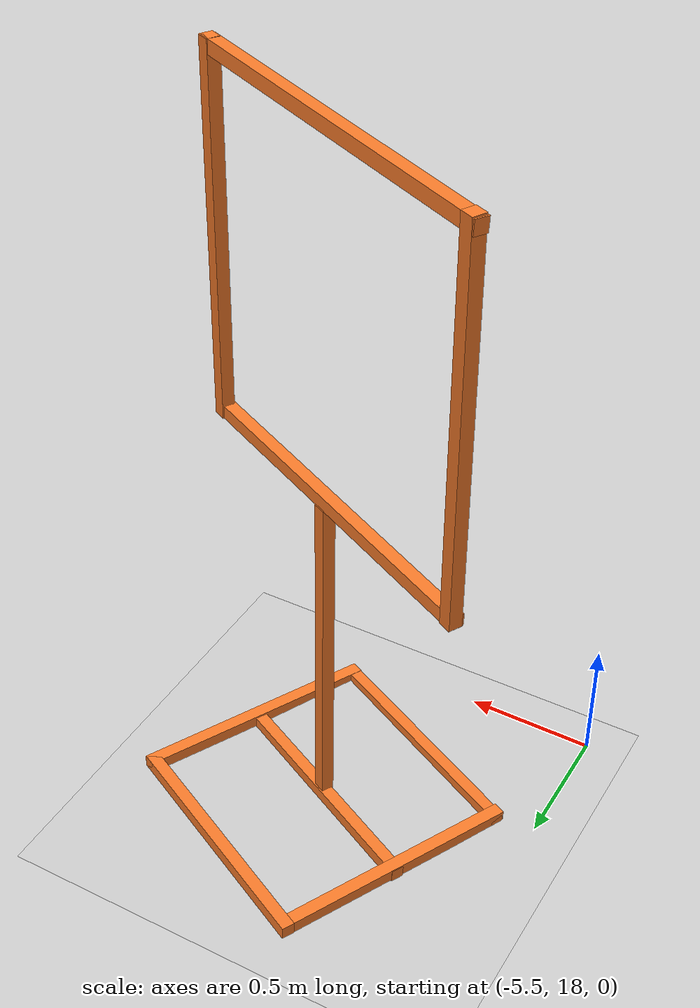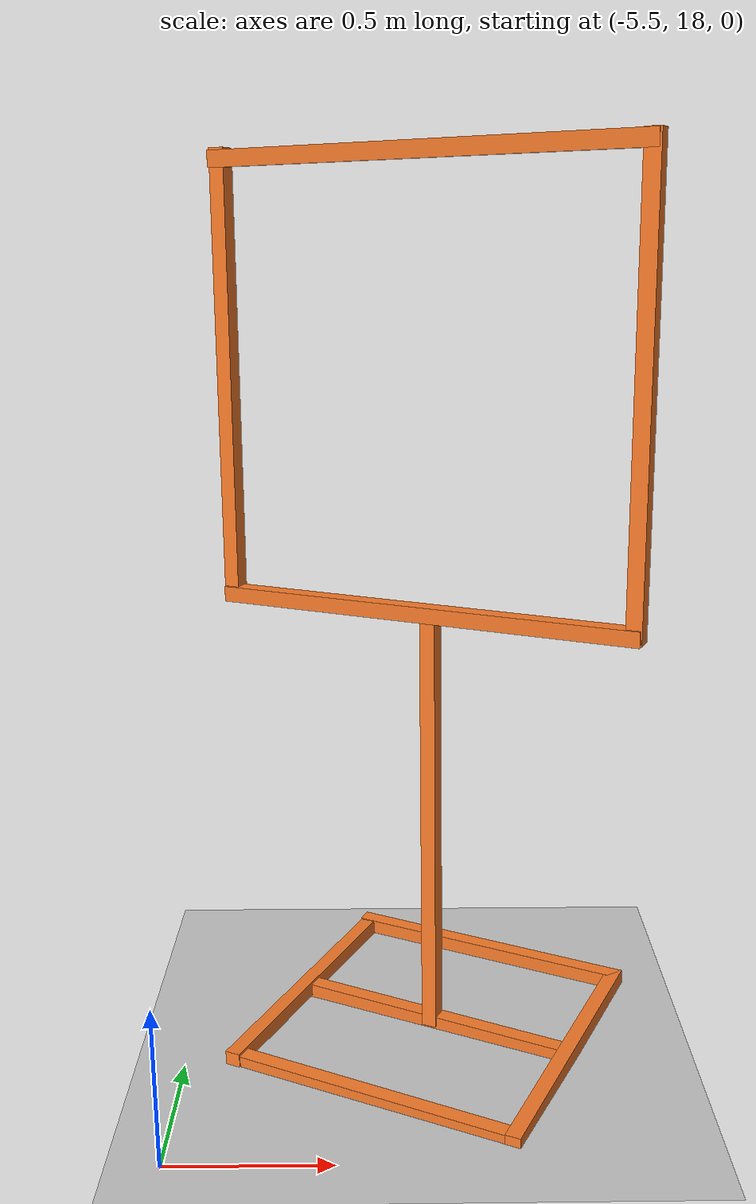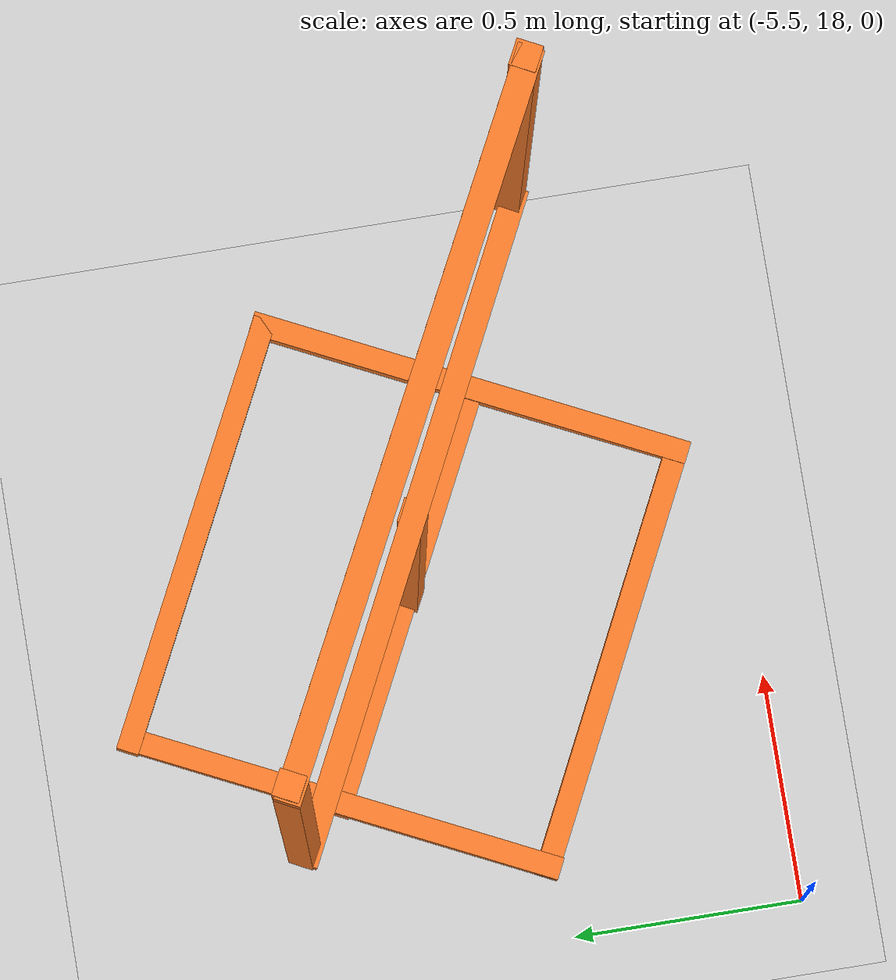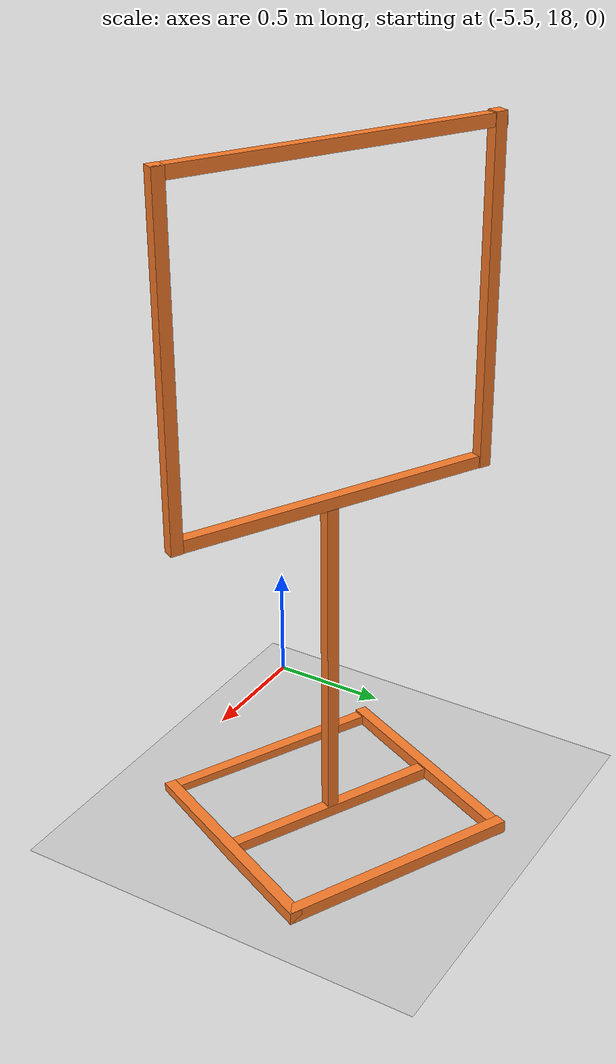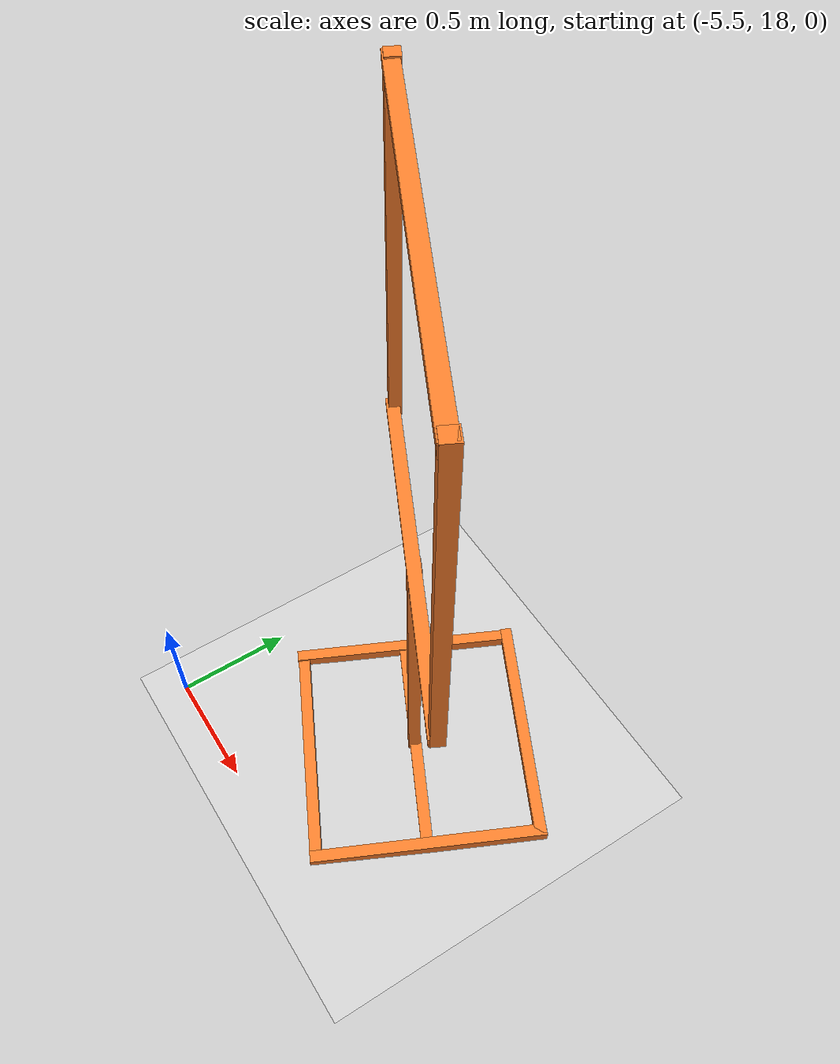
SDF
<sdf version="1.6">
 <world name="default">
  <model name="ground_plane">
   <static>1</static>
   <link name="link">
    <collision name="collision">
     <geometry><plane><normal>0 0 1</normal><size>100 100</size></plane></geometry>
     <surface><friction><ode><mu>100</mu><mu2>50</mu2></ode></friction></surface>
    </collision>
    <visual name="visual">
     <cast_shadows>0</cast_shadows>
     <geometry><plane><normal>0 0 1</normal><size>100 100</size></plane></geometry>
     <material>
      <script><uri>file://media/materials/scripts/gazebo.material</uri><name>Gazebo/Grey</name></script>
     </material>
    </visual>
    <velocity_decay><linear>0</linear><angular>0</angular></velocity_decay>
   </link>
  </model>
  <model name="closed_gate_clone_clone_clone_2">
   <link name="link">
    <inertial>
     <mass>1</mass>
     <inertia>
      <ixx>0.166667</ixx>
      <ixy>0</ixy>
      <ixz>0</ixz>
      <iyy>0.166667</iyy>
      <iyz>0</iyz>
      <izz>0.166667</izz>
     </inertia>
    </inertial>
    <pose>0.404756 -0.715724 1.41623 0 -0 0</pose>
    <visual name="visual">
     <geometry><box><size>0.05 0.05 1.4</size></box></geometry>
     <material>
      <script><name>Gazebo/Grey</name><uri>file://media/materials/scripts/gazebo.material</uri></script>
      <shader type="vertex"><normal_map>__default__</normal_map></shader>
      <ambient>0.976 0.484 0.164 1</ambient>
      <diffuse>0.976 0.484 0.164 1</diffuse>
      <specular>0.01 0.01 0.01 1</specular>
      <emissive>0 0 0 1</emissive>
     </material>
    </visual>
    <collision name="collision">
     <geometry><box><size>0.05 0.05 1.4</size></box></geometry>
     <surface>
      <friction>
       <ode><mu>1</mu><mu2>1</mu2><fdir1>0 0 0</fdir1><slip1>0</slip1><slip2>0</slip2></ode>
       <torsional>
        <coefficient>1</coefficient>
        <patch_radius>0</patch_radius>
        <surface_radius>0</surface_radius>
        <use_patch_radius>1</use_patch_radius>
        <ode><slip>0</slip></ode>
       </torsional>
      </friction>
      <bounce><restitution_coefficient>0</restitution_coefficient><threshold>1e+06</threshold></bounce>
      <contact>
       <collide_without_contact>0</collide_without_contact>
       <collide_without_contact_bitmask>1</collide_without_contact_bitmask>
       <collide_bitmask>1</collide_bitmask>
       <ode>
        <soft_cfm>0</soft_cfm>
        <soft_erp>0.2</soft_erp>
        <kp>1e+13</kp>
        <kd>1</kd>
        <max_vel>0.01</max_vel>
        <min_depth>0</min_depth>
       </ode>
       <bullet>
        <split_impulse>1</split_impulse>
        <split_impulse_penetration_threshold>-0.01</split_impulse_penetration_threshold>
        <soft_cfm>0</soft_cfm>
        <soft_erp>0.2</soft_erp>
        <kp>1e+13</kp>
        <kd>1</kd>
       </bullet>
      </contact>
     </surface>
    </collision>
   </link>
   <link name="link_clone_0_clone_0">
    <inertial>
     <mass>1</mass>
     <inertia>
      <ixx>0.166667</ixx>
      <ixy>0</ixy>
      <ixz>0</ixz>
      <iyy>0.166667</iyy>
      <iyz>0</iyz>
      <izz>0.166667</izz>
     </inertia>
    </inertial>
    <pose>1.11096 -0.693594 -0.667388 -1.57955 0.044957 -1.56415</pose>
    <visual name="visual">
     <geometry><box><size>0.05 0.05 1</size></box></geometry>
     <material>
      <script><name>Gazebo/Grey</name><uri>file://media/materials/scripts/gazebo.material</uri></script>
      <shader type="vertex"><normal_map>__default__</normal_map></shader>
      <ambient>0.976 0.484 0.164 1</ambient>
      <diffuse>0.976 0.484 0.164 1</diffuse>
      <specular>0.01 0.01 0.01 1</specular>
      <emissive>0 0 0 1</emissive>
     </material>
    </visual>
    <collision name="collision">
     <geometry><box><size>0.05 0.05 1</size></box></geometry>
     <surface>
      <friction>
       <ode><mu>1</mu><mu2>1</mu2><fdir1>0 0 0</fdir1><slip1>0</slip1><slip2>0</slip2></ode>
       <torsional>
        <coefficient>1</coefficient>
        <patch_radius>0</patch_radius>
        <surface_radius>0</surface_radius>
        <use_patch_radius>1</use_patch_radius>
        <ode><slip>0</slip></ode>
       </torsional>
      </friction>
      <bounce><restitution_coefficient>0</restitution_coefficient><threshold>1e+06</threshold></bounce>
      <contact>
       <collide_without_contact>0</collide_without_contact>
       <collide_without_contact_bitmask>1</collide_without_contact_bitmask>
       <collide_bitmask>1</collide_bitmask>
       <ode>
        <soft_cfm>0</soft_cfm>
        <soft_erp>0.2</soft_erp>
        <kp>1e+13</kp>
        <kd>1</kd>
        <max_vel>0.01</max_vel>
        <min_depth>0</min_depth>
       </ode>
       <bullet>
        <split_impulse>1</split_impulse>
        <split_impulse_penetration_threshold>-0.01</split_impulse_penetration_threshold>
        <soft_cfm>0</soft_cfm>
        <soft_erp>0.2</soft_erp>
        <kp>1e+13</kp>
        <kd>1</kd>
       </bullet>
      </contact>
     </surface>
    </collision>
   </link>
   <link name="link_clone_0_clone_0_clone">
    <inertial>
     <mass>1</mass>
     <inertia>
      <ixx>0.166667</ixx>
      <ixy>0</ixy>
      <ixz>0</ixz>
      <iyy>0.166667</iyy>
      <iyz>0</iyz>
      <izz>0.166667</izz>
     </inertia>
    </inertial>
    <pose>0.637485 -0.695511 -0.656732 -1.55146 -0.019345 0.017432</pose>
    <visual name="visual">
     <geometry><box><size>0.05 0.05 1</size></box></geometry>
     <material>
      <script><name>Gazebo/Grey</name><uri>file://media/materials/scripts/gazebo.material</uri></script>
      <shader type="vertex"><normal_map>__default__</normal_map></shader>
      <ambient>0.976 0.484 0.164 1</ambient>
      <diffuse>0.976 0.484 0.164 1</diffuse>
      <specular>0.01 0.01 0.01 1</specular>
      <emissive>0 0 0 1</emissive>
     </material>
    </visual>
    <collision name="collision">
     <geometry><box><size>0.05 0.05 1</size></box></geometry>
     <surface>
      <friction>
       <ode><mu>1</mu><mu2>1</mu2><fdir1>0 0 0</fdir1><slip1>0</slip1><slip2>0</slip2></ode>
       <torsional>
        <coefficient>1</coefficient>
        <patch_radius>0</patch_radius>
        <surface_radius>0</surface_radius>
        <use_patch_radius>1</use_patch_radius>
        <ode><slip>0</slip></ode>
       </torsional>
      </friction>
      <bounce><restitution_coefficient>0</restitution_coefficient><threshold>1e+06</threshold></bounce>
      <contact>
       <collide_without_contact>0</collide_without_contact>
       <collide_without_contact_bitmask>1</collide_without_contact_bitmask>
       <collide_bitmask>1</collide_bitmask>
       <ode>
        <soft_cfm>0</soft_cfm>
        <soft_erp>0.2</soft_erp>
        <kp>1e+13</kp>
        <kd>1</kd>
        <max_vel>0.01</max_vel>
        <min_depth>0</min_depth>
       </ode>
       <bullet>
        <split_impulse>1</split_impulse>
        <split_impulse_penetration_threshold>-0.01</split_impulse_penetration_threshold>
        <soft_cfm>0</soft_cfm>
        <soft_erp>0.2</soft_erp>
        <kp>1e+13</kp>
        <kd>1</kd>
       </bullet>
      </contact>
     </surface>
    </collision>
   </link>
   <link name="link_clone_0_clone_0_clone_0">
    <inertial>
     <mass>1</mass>
     <inertia>
      <ixx>0.166667</ixx>
      <ixy>0</ixy>
      <ixz>0</ixz>
      <iyy>0.166667</iyy>
      <iyz>0</iyz>
      <izz>0.166667</izz>
     </inertia>
    </inertial>
    <pose>1.12077 -1.16283 -0.677317 -1.57839 0.053451 -1.56287</pose>
    <visual name="visual">
     <geometry><box><size>0.05 0.05 1</size></box></geometry>
     <material>
      <script><name>Gazebo/Grey</name><uri>file://media/materials/scripts/gazebo.material</uri></script>
      <shader type="vertex"><normal_map>__default__</normal_map></shader>
      <ambient>0.976 0.484 0.164 1</ambient>
      <diffuse>0.976 0.484 0.164 1</diffuse>
      <specular>0.01 0.01 0.01 1</specular>
      <emissive>0 0 0 1</emissive>
     </material>
    </visual>
    <collision name="collision">
     <geometry><box><size>0.05 0.05 1</size></box></geometry>
     <surface>
      <friction>
       <ode><mu>1</mu><mu2>1</mu2><fdir1>0 0 0</fdir1><slip1>0</slip1><slip2>0</slip2></ode>
       <torsional>
        <coefficient>1</coefficient>
        <patch_radius>0</patch_radius>
        <surface_radius>0</surface_radius>
        <use_patch_radius>1</use_patch_radius>
        <ode><slip>0</slip></ode>
       </torsional>
      </friction>
      <bounce><restitution_coefficient>0</restitution_coefficient><threshold>1e+06</threshold></bounce>
      <contact>
       <collide_without_contact>0</collide_without_contact>
       <collide_without_contact_bitmask>1</collide_without_contact_bitmask>
       <collide_bitmask>1</collide_bitmask>
       <ode>
        <soft_cfm>0</soft_cfm>
        <soft_erp>0.2</soft_erp>
        <kp>1e+13</kp>
        <kd>1</kd>
        <max_vel>0.01</max_vel>
        <min_depth>0</min_depth>
       </ode>
       <bullet>
        <split_impulse>1</split_impulse>
        <split_impulse_penetration_threshold>-0.01</split_impulse_penetration_threshold>
        <soft_cfm>0</soft_cfm>
        <soft_erp>0.2</soft_erp>
        <kp>1e+13</kp>
        <kd>1</kd>
       </bullet>
      </contact>
     </surface>
    </collision>
   </link>
   <link name="link_clone_0_clone_0_clone_2">
    <inertial>
     <mass>1</mass>
     <inertia>
      <ixx>0.166667</ixx>
      <ixy>0</ixy>
      <ixz>0</ixz>
      <iyy>0.166667</iyy>
      <iyz>0</iyz>
      <izz>0.166667</izz>
     </inertia>
    </inertial>
    <pose>1.10088 -0.214462 -0.645898 -1.57451 0.053447 -1.56287</pose>
    <visual name="visual">
     <geometry><box><size>0.05 0.05 1</size></box></geometry>
     <material>
      <script><name>Gazebo/Grey</name><uri>file://media/materials/scripts/gazebo.material</uri></script>
      <shader type="vertex"><normal_map>__default__</normal_map></shader>
      <ambient>0.976 0.484 0.164 1</ambient>
      <diffuse>0.976 0.484 0.164 1</diffuse>
      <specular>0.01 0.01 0.01 1</specular>
      <emissive>0 0 0 1</emissive>
     </material>
    </visual>
    <collision name="collision">
     <geometry><box><size>0.05 0.05 1</size></box></geometry>
     <surface>
      <friction>
       <ode><mu>1</mu><mu2>1</mu2><fdir1>0 0 0</fdir1><slip1>0</slip1><slip2>0</slip2></ode>
       <torsional>
        <coefficient>1</coefficient>
        <patch_radius>0</patch_radius>
        <surface_radius>0</surface_radius>
        <use_patch_radius>1</use_patch_radius>
        <ode><slip>0</slip></ode>
       </torsional>
      </friction>
      <bounce><restitution_coefficient>0</restitution_coefficient><threshold>1e+06</threshold></bounce>
      <contact>
       <collide_without_contact>0</collide_without_contact>
       <collide_without_contact_bitmask>1</collide_without_contact_bitmask>
       <collide_bitmask>1</collide_bitmask>
       <ode>
        <soft_cfm>0</soft_cfm>
        <soft_erp>0.2</soft_erp>
        <kp>1e+13</kp>
        <kd>1</kd>
        <max_vel>0.01</max_vel>
        <min_depth>0</min_depth>
       </ode>
       <bullet>
        <split_impulse>1</split_impulse>
        <split_impulse_penetration_threshold>-0.01</split_impulse_penetration_threshold>
        <soft_cfm>0</soft_cfm>
        <soft_erp>0.2</soft_erp>
        <kp>1e+13</kp>
        <kd>1</kd>
       </bullet>
      </contact>
     </surface>
    </collision>
   </link>
   <link name="link_clone_0_clone_0_clone_clone">
    <inertial>
     <mass>1</mass>
     <inertia>
      <ixx>0.166667</ixx>
      <ixy>0</ixy>
      <ixz>0</ixz>
      <iyy>0.166667</iyy>
      <iyz>0</iyz>
      <izz>0.166667</izz>
     </inertia>
    </inertial>
    <pose>1.59453 -0.684923 -0.663241 -1.53838 -0.023075 0.018345</pose>
    <visual name="visual">
     <geometry><box><size>0.05 0.05 1</size></box></geometry>
     <material>
      <script><name>Gazebo/Grey</name><uri>file://media/materials/scripts/gazebo.material</uri></script>
      <shader type="vertex"><normal_map>__default__</normal_map></shader>
      <ambient>0.976 0.484 0.164 1</ambient>
      <diffuse>0.976 0.484 0.164 1</diffuse>
      <specular>0.01 0.01 0.01 1</specular>
      <emissive>0 0 0 1</emissive>
     </material>
    </visual>
    <collision name="collision">
     <geometry><box><size>0.05 0.05 1</size></box></geometry>
     <surface>
      <friction>
       <ode><mu>1</mu><mu2>1</mu2><fdir1>0 0 0</fdir1><slip1>0</slip1><slip2>0</slip2></ode>
       <torsional>
        <coefficient>1</coefficient>
        <patch_radius>0</patch_radius>
        <surface_radius>0</surface_radius>
        <use_patch_radius>1</use_patch_radius>
        <ode><slip>0</slip></ode>
       </torsional>
      </friction>
      <bounce><restitution_coefficient>0</restitution_coefficient><threshold>1e+06</threshold></bounce>
      <contact>
       <collide_without_contact>0</collide_without_contact>
       <collide_without_contact_bitmask>1</collide_without_contact_bitmask>
       <collide_bitmask>1</collide_bitmask>
       <ode>
        <soft_cfm>0</soft_cfm>
        <soft_erp>0.2</soft_erp>
        <kp>1e+13</kp>
        <kd>1</kd>
        <max_vel>0.01</max_vel>
        <min_depth>0</min_depth>
       </ode>
       <bullet>
        <split_impulse>1</split_impulse>
        <split_impulse_penetration_threshold>-0.01</split_impulse_penetration_threshold>
        <soft_cfm>0</soft_cfm>
        <soft_erp>0.2</soft_erp>
        <kp>1e+13</kp>
        <kd>1</kd>
       </bullet>
      </contact>
     </surface>
    </collision>
   </link>
   <link name="link_clone_0_clone_1">
    <inertial>
     <mass>1</mass>
     <inertia>
      <ixx>0.166667</ixx>
      <ixy>0</ixy>
      <ixz>0</ixz>
      <iyy>0.166667</iyy>
      <iyz>0</iyz>
      <izz>0.166667</izz>
     </inertia>
    </inertial>
    <pose>1.08198 -0.717602 0.744079 -1.56201 0.04483 -1.56244</pose>
    <visual name="visual">
     <geometry><box><size>0.05 0.05 1.4</size></box></geometry>
     <material>
      <script><name>Gazebo/Grey</name><uri>file://media/materials/scripts/gazebo.material</uri></script>
      <shader type="vertex"><normal_map>__default__</normal_map></shader>
      <ambient>0.976 0.484 0.164 1</ambient>
      <diffuse>0.976 0.484 0.164 1</diffuse>
      <specular>0.01 0.01 0.01 1</specular>
      <emissive>0 0 0 1</emissive>
     </material>
    </visual>
    <collision name="collision">
     <geometry><box><size>0.05 0.05 1.4</size></box></geometry>
     <surface>
      <friction>
       <ode><mu>1</mu><mu2>1</mu2><fdir1>0 0 0</fdir1><slip1>0</slip1><slip2>0</slip2></ode>
       <torsional>
        <coefficient>1</coefficient>
        <patch_radius>0</patch_radius>
        <surface_radius>0</surface_radius>
        <use_patch_radius>1</use_patch_radius>
        <ode><slip>0</slip></ode>
       </torsional>
      </friction>
      <bounce><restitution_coefficient>0</restitution_coefficient><threshold>1e+06</threshold></bounce>
      <contact>
       <collide_without_contact>0</collide_without_contact>
       <collide_without_contact_bitmask>1</collide_without_contact_bitmask>
       <collide_bitmask>1</collide_bitmask>
       <ode>
        <soft_cfm>0</soft_cfm>
        <soft_erp>0.2</soft_erp>
        <kp>1e+13</kp>
        <kd>1</kd>
        <max_vel>0.01</max_vel>
        <min_depth>0</min_depth>
       </ode>
       <bullet>
        <split_impulse>1</split_impulse>
        <split_impulse_penetration_threshold>-0.01</split_impulse_penetration_threshold>
        <soft_cfm>0</soft_cfm>
        <soft_erp>0.2</soft_erp>
        <kp>1e+13</kp>
        <kd>1</kd>
       </bullet>
      </contact>
     </surface>
    </collision>
   </link>
   <link name="link_clone_0_clone_1_clone">
    <inertial>
     <mass>1</mass>
     <inertia>
      <ixx>0.166667</ixx>
      <ixy>0</ixy>
      <ixz>0</ixz>
      <iyy>0.166667</iyy>
      <iyz>0</iyz>
      <izz>0.166667</izz>
     </inertia>
    </inertial>
    <pose>1.07529 -0.719849 2.09328 -1.55888 0.053444 -1.57124</pose>
    <visual name="visual">
     <geometry><box><size>0.05 0.05 1.4</size></box></geometry>
     <material>
      <script><name>Gazebo/Grey</name><uri>file://media/materials/scripts/gazebo.material</uri></script>
      <shader type="vertex"><normal_map>__default__</normal_map></shader>
      <ambient>0.976 0.484 0.164 1</ambient>
      <diffuse>0.976 0.484 0.164 1</diffuse>
      <specular>0.01 0.01 0.01 1</specular>
      <emissive>0 0 0 1</emissive>
     </material>
    </visual>
    <collision name="collision">
     <geometry><box><size>0.05 0.05 1.4</size></box></geometry>
     <surface>
      <friction>
       <ode><mu>1</mu><mu2>1</mu2><fdir1>0 0 0</fdir1><slip1>0</slip1><slip2>0</slip2></ode>
       <torsional>
        <coefficient>1</coefficient>
        <patch_radius>0</patch_radius>
        <surface_radius>0</surface_radius>
        <use_patch_radius>1</use_patch_radius>
        <ode><slip>0</slip></ode>
       </torsional>
      </friction>
      <bounce><restitution_coefficient>0</restitution_coefficient><threshold>1e+06</threshold></bounce>
      <contact>
       <collide_without_contact>0</collide_without_contact>
       <collide_without_contact_bitmask>1</collide_without_contact_bitmask>
       <collide_bitmask>1</collide_bitmask>
       <ode>
        <soft_cfm>0</soft_cfm>
        <soft_erp>0.2</soft_erp>
        <kp>1e+13</kp>
        <kd>1</kd>
        <max_vel>0.01</max_vel>
        <min_depth>0</min_depth>
       </ode>
       <bullet>
        <split_impulse>1</split_impulse>
        <split_impulse_penetration_threshold>-0.01</split_impulse_penetration_threshold>
        <soft_cfm>0</soft_cfm>
        <soft_erp>0.2</soft_erp>
        <kp>1e+13</kp>
        <kd>1</kd>
       </bullet>
      </contact>
     </surface>
    </collision>
   </link>
   <link name="link_clone_1">
    <inertial>
     <mass>1</mass>
     <inertia>
      <ixx>0.166667</ixx>
      <ixy>0</ixy>
      <ixz>0</ixz>
      <iyy>0.166667</iyy>
      <iyz>0</iyz>
      <izz>0.166667</izz>
     </inertia>
    </inertial>
    <pose>1.11167 -0.706269 0.02254 0.008527 -0.003582 0.001077</pose>
    <visual name="visual">
     <geometry><box><size>0.05 0.05 1.4</size></box></geometry>
     <material>
      <script><name>Gazebo/Grey</name><uri>file://media/materials/scripts/gazebo.material</uri></script>
      <shader type="vertex"><normal_map>__default__</normal_map></shader>
      <ambient>0.976 0.484 0.164 1</ambient>
      <diffuse>0.976 0.484 0.164 1</diffuse>
      <specular>0.01 0.01 0.01 1</specular>
      <emissive>0 0 0 1</emissive>
     </material>
    </visual>
    <collision name="collision">
     <geometry><box><size>0.05 0.05 1.4</size></box></geometry>
     <surface>
      <friction>
       <ode><mu>1</mu><mu2>1</mu2><fdir1>0 0 0</fdir1><slip1>0</slip1><slip2>0</slip2></ode>
       <torsional>
        <coefficient>1</coefficient>
        <patch_radius>0</patch_radius>
        <surface_radius>0</surface_radius>
        <use_patch_radius>1</use_patch_radius>
        <ode><slip>0</slip></ode>
       </torsional>
      </friction>
      <bounce><restitution_coefficient>0</restitution_coefficient><threshold>1e+06</threshold></bounce>
      <contact>
       <collide_without_contact>0</collide_without_contact>
       <collide_without_contact_bitmask>1</collide_without_contact_bitmask>
       <collide_bitmask>1</collide_bitmask>
       <ode>
        <soft_cfm>0</soft_cfm>
        <soft_erp>0.2</soft_erp>
        <kp>1e+13</kp>
        <kd>1</kd>
        <max_vel>0.01</max_vel>
        <min_depth>0</min_depth>
       </ode>
       <bullet>
        <split_impulse>1</split_impulse>
        <split_impulse_penetration_threshold>-0.01</split_impulse_penetration_threshold>
        <soft_cfm>0</soft_cfm>
        <soft_erp>0.2</soft_erp>
        <kp>1e+13</kp>
        <kd>1</kd>
       </bullet>
      </contact>
     </surface>
    </collision>
   </link>
   <link name="link_clone_7">
    <inertial>
     <mass>1</mass>
     <inertia>
      <ixx>0.166667</ixx>
      <ixy>0</ixy>
      <ixz>0</ixz>
      <iyy>0.166667</iyy>
      <iyz>0</iyz>
      <izz>0.166667</izz>
     </inertia>
    </inertial>
    <pose>1.75876 -0.711707 1.42733 0.008527 -0.003582 0.001077</pose>
    <visual name="visual">
     <geometry><box><size>0.05 0.05 1.4</size></box></geometry>
     <material>
      <script><name>Gazebo/Grey</name><uri>file://media/materials/scripts/gazebo.material</uri></script>
      <shader type="vertex"><normal_map>__default__</normal_map></shader>
      <ambient>0.976 0.484 0.164 1</ambient>
      <diffuse>0.976 0.484 0.164 1</diffuse>
      <specular>0.01 0.01 0.01 1</specular>
      <emissive>0 0 0 1</emissive>
     </material>
    </visual>
    <collision name="collision">
     <geometry><box><size>0.05 0.05 1.4</size></box></geometry>
     <surface>
      <friction>
       <ode><mu>1</mu><mu2>1</mu2><fdir1>0 0 0</fdir1><slip1>0</slip1><slip2>0</slip2></ode>
       <torsional>
        <coefficient>1</coefficient>
        <patch_radius>0</patch_radius>
        <surface_radius>0</surface_radius>
        <use_patch_radius>1</use_patch_radius>
        <ode><slip>0</slip></ode>
       </torsional>
      </friction>
      <bounce><restitution_coefficient>0</restitution_coefficient><threshold>1e+06</threshold></bounce>
      <contact>
       <collide_without_contact>0</collide_without_contact>
       <collide_without_contact_bitmask>1</collide_without_contact_bitmask>
       <collide_bitmask>1</collide_bitmask>
       <ode>
        <soft_cfm>0</soft_cfm>
        <soft_erp>0.2</soft_erp>
        <kp>1e+13</kp>
        <kd>1</kd>
        <max_vel>0.01</max_vel>
        <min_depth>0</min_depth>
       </ode>
       <bullet>
        <split_impulse>1</split_impulse>
        <split_impulse_penetration_threshold>-0.01</split_impulse_penetration_threshold>
        <soft_cfm>0</soft_cfm>
        <soft_erp>0.2</soft_erp>
        <kp>1e+13</kp>
        <kd>1</kd>
       </bullet>
      </contact>
     </surface>
    </collision>
   </link>
   <static>1</static>
   <pose>-5.38455 19.8652 0.68342 0 0 -0.470174</pose>
  </model>
 </world>
</sdf>
